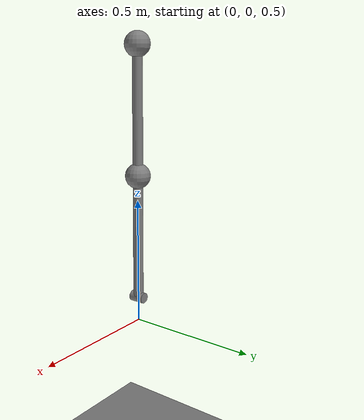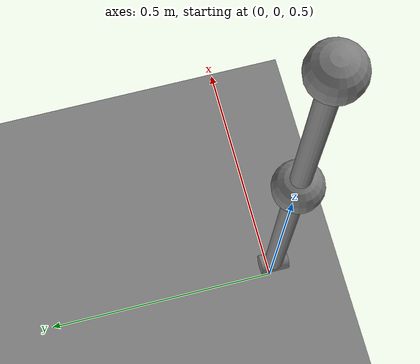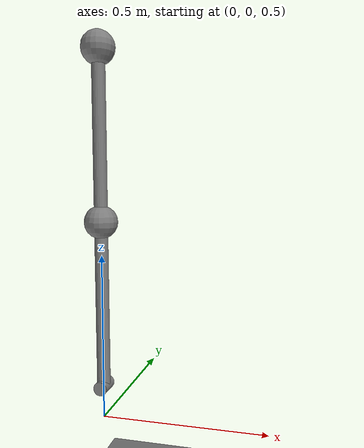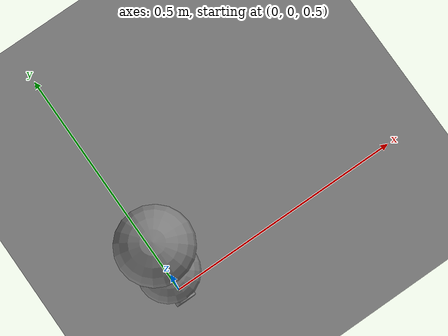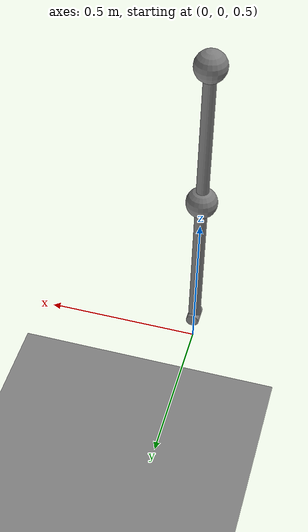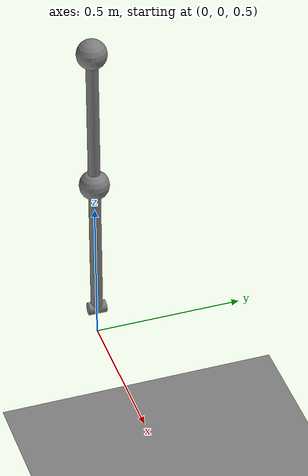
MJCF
<mujoco model="pendulum">

  <option timestep="0.02">
    <flag contact="disable" energy="enable"/>
  </option>

  <worldbody>
    <light name="light" pos="0 0 2"/>
    <geom name="floor" size="2 2 .2" type="plane" />
    <camera name="fixed" pos="0 -1.5 2" xyaxes='1 0 0 0 1 1'/>
    <camera name="lookat" mode="targetbodycom" target="pole1" pos="0 -2 1"/>
    <body name="pole1" pos="0 0 .6">
      <joint name="hinge1" type="hinge" axis="0 1 0" damping="0.0"/>
      <geom name="base1" type="cylinder" fromto="0 -.03 0 0 .03 0" size="0.021" mass="0"/>
      <geom name="pole1"  type="capsule" fromto="0 0 0 0 0 0.5" size="0.02" mass="0"/>
      <geom name="mass1" type="sphere" pos="0 0 0.5" size="0.05" mass="1"/>
      <body name="pole2" pos="0 0 .5">
        <joint name="hinge2" type="hinge" axis="0 1 0" damping="0.0"/>
        <geom name="base2" type="cylinder" fromto="0 -.03 0 0 .03 0" size="0.021" mass="0"/>
        <geom name="pole2"  type="capsule" fromto="0 0 0 0 0 0.5" size="0.02" mass="0"/>
        <geom name="mass2" type="sphere" pos="0 0 0.5" size="0.05" mass="1"/>
        <site type='sphere' name='EE' size='.02' pos='0.0 0.0 0.5' rgba=" .5 .1 .1 1"/>
      </body>
    </body>
  </worldbody>

  <actuator>
    <motor name="torque1" joint="hinge1" />
    <motor name="torque2" joint="hinge2" />
  </actuator>
</mujoco>
